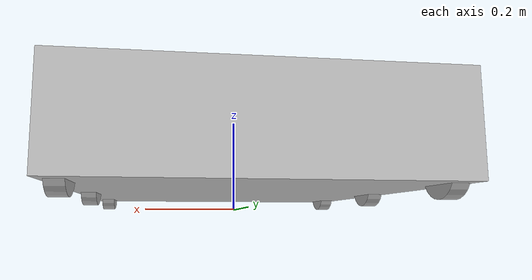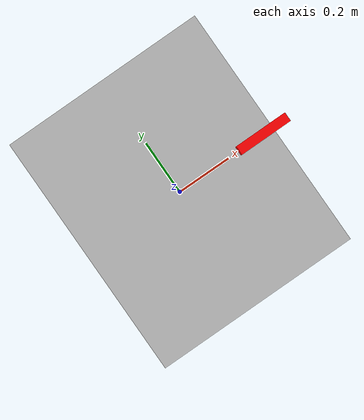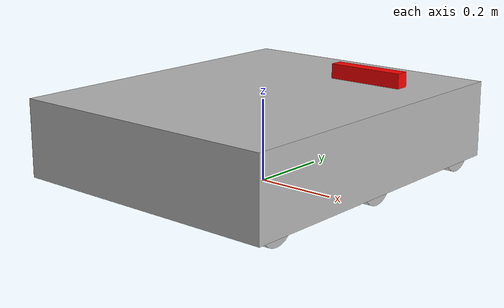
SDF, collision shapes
<?xml version="1.0" ?>
<sdf version="1.5">
  <model name="frc2018_robot">
    <static>false</static>

    <!-- Links -->
    <link name="chassis">

      <!-- Inertia -->
      <inertial>
        <mass>45.3592</mass>
        <inertia>
          <ixx>2.7851686</ixx>
          <ixy>0</ixy>
          <ixz>0</ixz>
          <iyy>1.9585429</iyy>
          <iyz>0</iyz>
          <izz>4.4737342</izz>
        </inertia>
      </inertial>

      <!-- Visuals -->
      <visual name="robot_visual">
        <geometry>
          <mesh>
            <uri>model://Gazebo2018/frc2018_robot/meshes/robot.obj</uri>
          </mesh>
        </geometry>
      </visual>

      <!-- Collision geometries -->
      <collision name='robot_collision'>
        <pose>0 0 0.129853 0 0 0</pose>
        <geometry>
          <box>
            <size>0.694572 0.837328 0.188976</size>
          </box>
        </geometry>
      </collision>

      <collision name='wheel_bl_collision'>
        <pose>-0.31847 -0.346192 0.060411 0 1.5707963 0</pose>
        <geometry>
          <cylinder>
            <radius>0.0508</radius>
            <length>0.03175</length>
          </cylinder>
        </geometry>
        <surface>
          <friction>
            <ode>
              <mu>0</mu>
              <mu2>0</mu2>
              <slip1>1.0</slip1>
              <slip2>1.0</slip2>
            </ode>
          </friction>
        </surface>
      </collision>

      <collision name='wheel_br_collision'>
        <pose>0.31484 -0.346192 0.060411 0 1.5707963 0</pose>
        <geometry>
          <cylinder>
            <radius>0.0508</radius>
            <length>0.03175</length>
          </cylinder>
        </geometry>
        <surface>
          <friction>
            <ode>
              <mu>0</mu>
              <mu2>0</mu2>
              <slip1>1.0</slip1>
              <slip2>1.0</slip2>
            </ode>
          </friction>
        </surface>
      </collision>
    </link>

    <link name='wheel_fl'>
      <inertial>
        <mass>0.11</mass>
        <inertia>
          <ixx>0.0001419</ixx>
          <ixy>0</ixy>
          <ixz>0</ixz>
          <iyy>0.0000733</iyy>
          <iyz>0</iyz>
          <izz>0.0000733</izz>
        </inertia>
      </inertial>
      <pose>-0.322842 0.339673 0.060411 0 1.5707963 0</pose>
      <collision name='wheel_fl_collision'>
        <geometry>
          <cylinder>
            <radius>0.0508</radius>
            <length>0.03175</length>
          </cylinder>
        </geometry>
      </collision>
    </link>

    <link name='wheel_fr'>
      <inertial>
        <mass>0.11</mass>
        <inertia>
          <ixx>0.0001419</ixx>
          <ixy>0</ixy>
          <ixz>0</ixz>
          <iyy>0.0000733</iyy>
          <iyz>0</iyz>
          <izz>0.0000733</izz>
        </inertia>
      </inertial>
      <pose>0.31916 0.339673 0.060411 0 1.5707963 0</pose>
      <collision name='wheel_fr_collision'>
        <geometry>
          <cylinder>
            <radius>0.0508</radius>
            <length>0.03175</length>
          </cylinder>
        </geometry>
      </collision>
    </link>

    <link name='wheel_ml'>
      <inertial>
        <mass>0.11</mass>
        <inertia>
          <ixx>0.0001419</ixx>
          <ixy>0</ixy>
          <ixz>0</ixz>
          <iyy>0.0000733</iyy>
          <iyz>0</iyz>
          <izz>0.0000733</izz>
        </inertia>
      </inertial>
      <pose>-0.322842 -0.004098 0.060411 0 1.5707963 0</pose>
      <collision name='wheel_ml_collision'>
        <geometry>
          <cylinder>
            <radius>0.0508</radius>
            <length>0.03175</length>
          </cylinder>
        </geometry>
      </collision>
    </link>

    <link name='wheel_mr'>
      <inertial>
        <mass>0.11</mass>
        <inertia>
          <ixx>0.0001419</ixx>
          <ixy>0</ixy>
          <ixz>0</ixz>
          <iyy>0.0000733</iyy>
          <iyz>0</iyz>
          <izz>0.0000733</izz>
        </inertia>
      </inertial>
      <pose>0.31916 -0.004098 0.060411 0 1.5707963 0</pose>
      <collision name='wheel_mr_collision'>
        <geometry>
          <cylinder>
            <radius>0.0508</radius>
            <length>0.03175</length>
          </cylinder>
        </geometry>
      </collision>
    </link>

    <!-- Sensors -->
    <link name='zed_camera'>
      <inertial>
        <mass>0.16007</mass>
        <inertia>
          <ixx>0.00039322</ixx>
          <ixy>0</ixy>
          <ixz>0</ixz>
          <iyy>2.5042E-05</iyy>
          <iyz>0</iyz>
          <izz>0.00039512</izz>
        </inertia>
      </inertial>
      <pose>0.3 0 0.3 0 0 0</pose>
      <visual name='zed_visual'>
        <geometry>
          <box>
            <size>0.175 0.03 0.033</size>
          </box>
        </geometry>
        <material>
          <ambient>1 0 0 1</ambient>
        </material>
      </visual>
      <collision name='zed_collision'>
        <geometry>
          <box>
            <size>0.175 0.03 0.033</size>
          </box>
        </geometry>
      </collision>
    </link>

    <!-- Joints -->
    <joint name="wheel_fl_joint" type="revolute">
      <pose>0 0 0 0 0 0</pose>
      <parent>chassis</parent>
      <child>wheel_fl</child>
      <axis>
        <xyz>0 0 -1</xyz>
      </axis>
    </joint>

    <joint name="wheel_fr_joint" type="revolute">
      <pose>0 0 0 0 0 0</pose>
      <parent>chassis</parent>
      <child>wheel_fr</child>
      <axis>
        <xyz>0 0 -1</xyz>
      </axis>
    </joint>

    <joint name="wheel_ml_joint" type="revolute">
      <pose>0 0 0 0 0 0</pose>
      <parent>chassis</parent>
      <child>wheel_ml</child>
      <axis>
        <xyz>0 0 -1</xyz>
      </axis>
    </joint>

    <joint name="wheel_mr_joint" type="revolute">
      <pose>0 0 0 0 0 0</pose>
      <parent>chassis</parent>
      <child>wheel_mr</child>
      <axis>
        <xyz>0 0 -1</xyz>
      </axis>
    </joint>

    <!-- Sensor Joints -->
    <joint name="zed_joint" type="fixed">
      <pose>0 0 0 0 0 0</pose>
      <parent>chassis</parent>
      <child>zed_camera</child>
    </joint>

  </model>
</sdf>
